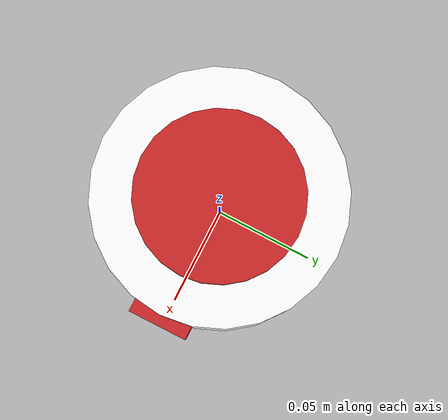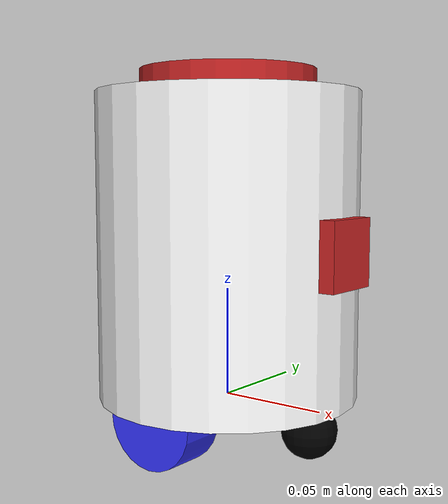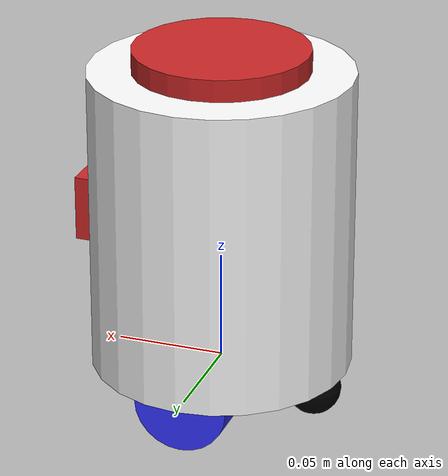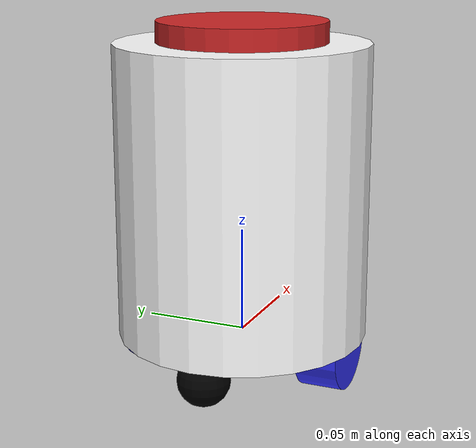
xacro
<?xml version="1.0"?>
<robot xmlns:xacro="http://www.ros.org/wiki/xacro"  name="robot">

    <xacro:include filename="robot_core.xacro" />

    <xacro:include filename="gazebo_control.xacro" />

    <xacro:include filename="lidar.xacro" />

    <xacro:include filename="camera.xacro" />

    <xacro:include filename="ros2_control.xacro" />

</robot>

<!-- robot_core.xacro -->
<robot xmlns:xacro="http://www.ros.org/wiki/xacro" >

    <xacro:include filename="inertial_macros.xacro"/>

    <material name="white">
        <color rgba="1 1 1 1" />
    </material>

    <material name="orange">
        <color rgba="1 0.3 0.1 1"/>
    </material>

    <material name="blue">
        <color rgba="0.2 0.2 1 1"/>
    </material>

    <material name="black">
        <color rgba="0 0 0 1"/>
    </material>

    <!-- BASE LINK -->

    <link name="base_link">

    </link>

    <!-- CHASSIS LINK -->

    <joint name="chassis_joint" type="fixed">
        <parent link="base_link"/>
        <child link="chassis"/>
        <origin xyz="0 0 0"/>
    </joint>

    <link name="chassis">
        <visual>
            <origin xyz="0 0 0.07"/>
            <geometry>
                <cylinder radius="0.06" length="0.14"/>
            </geometry>
            <material name="white"/>
        </visual>
        <collision>
            <origin xyz="0 0 0.07"/>
            <geometry>
                <cylinder radius="0.06" length="0.14"/>
            </geometry>
        </collision>
        <xacro:inertial_cylinder mass="0.5" length="0.14" radius="0.06">
            <origin xyz="0 0 0" rpy="0 0 0"/>
        </xacro:inertial_cylinder>
    </link>
    <gazebo reference="chassis">
        <material>Gazebo/White</material>
    </gazebo>

    <!-- LEFT WHEEL LINK -->

    <joint name="left_wheel_joint" type="continuous">
        <parent link="base_link"/>
        <child link="left_wheel"/>
        <origin xyz="0 0.045 0" rpy="-${pi/2} 0 0" />
        <axis xyz="0 0 1"/>
    </joint>

    <link name="left_wheel">
        <visual>
            <geometry>
                <cylinder radius="0.0215" length="0.02"/>
            </geometry>
            <material name="blue"/>
        </visual>
        <collision>
            <geometry>
                <cylinder radius="0.0215" length="0.02"/>
            </geometry>
        </collision>
        <xacro:inertial_cylinder mass="0.1" length="0.02" radius="0.0215">
            <origin xyz="0 0 0" rpy="0 0 0"/>
        </xacro:inertial_cylinder>
    </link>
    <gazebo reference="left_wheel">
        <material>Gazebo/Blue</material>
    </gazebo>

    <!-- RIGHT WHEEL LINK -->

    <joint name="right_wheel_joint" type="continuous">
        <parent link="base_link"/>
        <child link="right_wheel"/>
        <origin xyz="0 -0.045 0" rpy="${pi/2} 0 0" />
        <axis xyz="0 0 -1"/>
    </joint>

    <link name="right_wheel">
        <visual>
            <geometry>
                <cylinder radius="0.0215" length="0.02"/>
            </geometry>
            <material name="blue"/>
        </visual>
        <collision>
            <geometry>
                <cylinder radius="0.0215" length="0.02"/>
            </geometry>
        </collision>
        <xacro:inertial_cylinder mass="0.1" length="0.02" radius="0.0215">
            <origin xyz="0 0 0" rpy="0 0 0"/>
        </xacro:inertial_cylinder>
    </link>
    <gazebo reference="right_wheel">
        <material>Gazebo/Blue</material>
    </gazebo>

    <!-- CASTER WHEEL LINK -->

    <joint name="caster_wheel_joint" type="fixed">
        <parent link="chassis"/>
        <child link="caster_wheel"/>
        <origin xyz="0.045 0 -0.009"/>
    </joint>

    <link name="caster_wheel">
        <visual>
            <geometry>
                <sphere radius="0.0125"/>
            </geometry>
            <material name="black"/>
        </visual>
        <collision>
            <geometry>
                <sphere radius="0.0125"/>
            </geometry>
        </collision>
        <xacro:inertial_sphere mass="0.1" radius="0.0125">
            <origin xyz="0 0 0" rpy="0 0 0"/>
        </xacro:inertial_sphere>
    </link>
    <gazebo reference="caster_wheel">
        <material>Gazebo/Black</material>
        <mu1 value="0.001"/>
        <mu2 value="0.001"/>
    </gazebo>

    <!-- CASTER WHEE LINK -->

    <joint name="caster_whee_joint" type="fixed">
        <parent link="chassis"/>
        <child link="caster_whee"/>
        <origin xyz="-0.045 0 -0.009"/>
    </joint>

    <link name="caster_whee">
        <visual>
            <geometry>
                <sphere radius="0.0125"/>
            </geometry>
            <material name="black"/>
        </visual>
        <collision>
            <geometry>
                <sphere radius="0.0125"/>
            </geometry>
        </collision>
        <xacro:inertial_sphere mass="0.1" radius="0.0125">
            <origin xyz="0 0 0" rpy="0 0 0"/>
        </xacro:inertial_sphere>
    </link>
    <gazebo reference="caster_whee">
        <material>Gazebo/Black</material>
        <mu1 value="0.001"/>
        <mu2 value="0.001"/>
    </gazebo>

</robot>

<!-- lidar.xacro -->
<robot xmlns:xacro="http://www.ros.org/wiki/xacro" >

    <joint name="laser_joint" type="fixed">
        <parent link="chassis"/>
        <child link="laser_frame"/>
        <origin xyz="0 0 0.14" rpy="0 0 0"/>
    </joint>

    <link name="laser_frame">
        <visual>
            <geometry>
                <cylinder radius="0.04" length="0.02"/>
            </geometry>
            <material name="red"/>
        </visual>
        <collision>
            <geometry>
                <cylinder radius="0.04" length="0.02"/>
            </geometry>
        </collision>
        <xacro:inertial_cylinder mass="0.1" length="0.02" radius="0.0">
            <origin xyz="0 0 0" rpy="0 0 0"/>
        </xacro:inertial_cylinder>
    </link>

    <gazebo reference="laser_frame">
        <material>Gazebo/Red</material>

        <sensor name="laser" type="ray">
            <pose> 0 0 0 0 0 0 </pose>
            <visualize>true</visualize>
            <update_rate>10</update_rate>
            <ray>
                <scan>
                    <horizontal>
                        <samples>360</samples>
                        <min_angle>-3.14</min_angle>
                        <max_angle>3.14</max_angle>
                    </horizontal>
                </scan>
                <range>
                    <min>0.3</min>
                    <max>12</max>
                </range>
            </ray>
            <plugin name="laser_controller" filename="libgazebo_ros_ray_sensor.so">
                <ros>
                    <argument>~/out:=scan</argument>
                </ros>
                <output_type>sensor_msgs/LaserScan</output_type>
                <frame_name>laser_frame</frame_name>
            </plugin>
        </sensor>
    </gazebo>

</robot>

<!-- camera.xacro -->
<robot xmlns:xacro="http://www.ros.org/wiki/xacro" >

    <joint name="camera_joint" type="fixed">
        <parent link="chassis"/>
        <child link="camera_link"/>
        <origin xyz="0.06 0 0.07" rpy="0 0 0"/>
    </joint>

    <link name="camera_link">
        <visual>
            <geometry>
                <box size="0.010 0.03 0.03"/>
            </geometry>
            <material name="red"/>
        </visual>
    </link>

    <joint name="camera_optical_joint" type="fixed">
        <parent link="camera_link"/>
        <child link="camera_link_optical"/>
        <origin xyz="0 0 0" rpy="${-pi/2} 0 ${-pi/2}"/>
    </joint>

    <link name="camera_link_optical"></link>

    <gazebo reference="camera_link">
        <material>Gazebo/Red</material>

        <sensor name="camera" type="camera">
            <pose> 0 0 0 0 0 0 </pose>
            <visualize>true</visualize>
            <update_rate>10</update_rate>
            <camera>
                <horizontal_fov>1.089</horizontal_fov>
                <image>
                    <format>R8G8B8</format>
                    <width>640</width>
                    <height>480</height>
                </image>
                <clip>
                    <near>0.05</near>
                    <far>8.0</far>
                </clip>
            </camera>
            <plugin name="camera_controller" filename="libgazebo_ros_camera.so">
                <frame_name>camera_link_optical</frame_name>
            </plugin>
        </sensor>
    </gazebo>

</robot>
